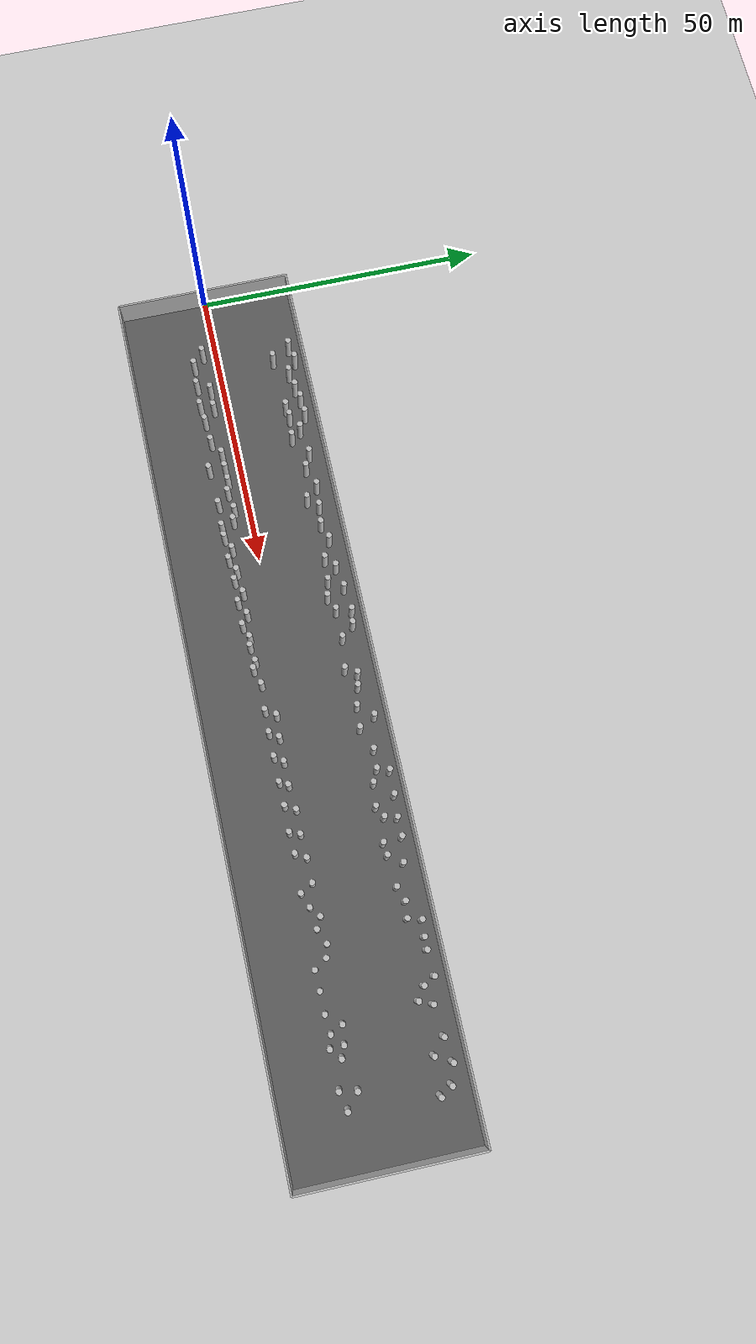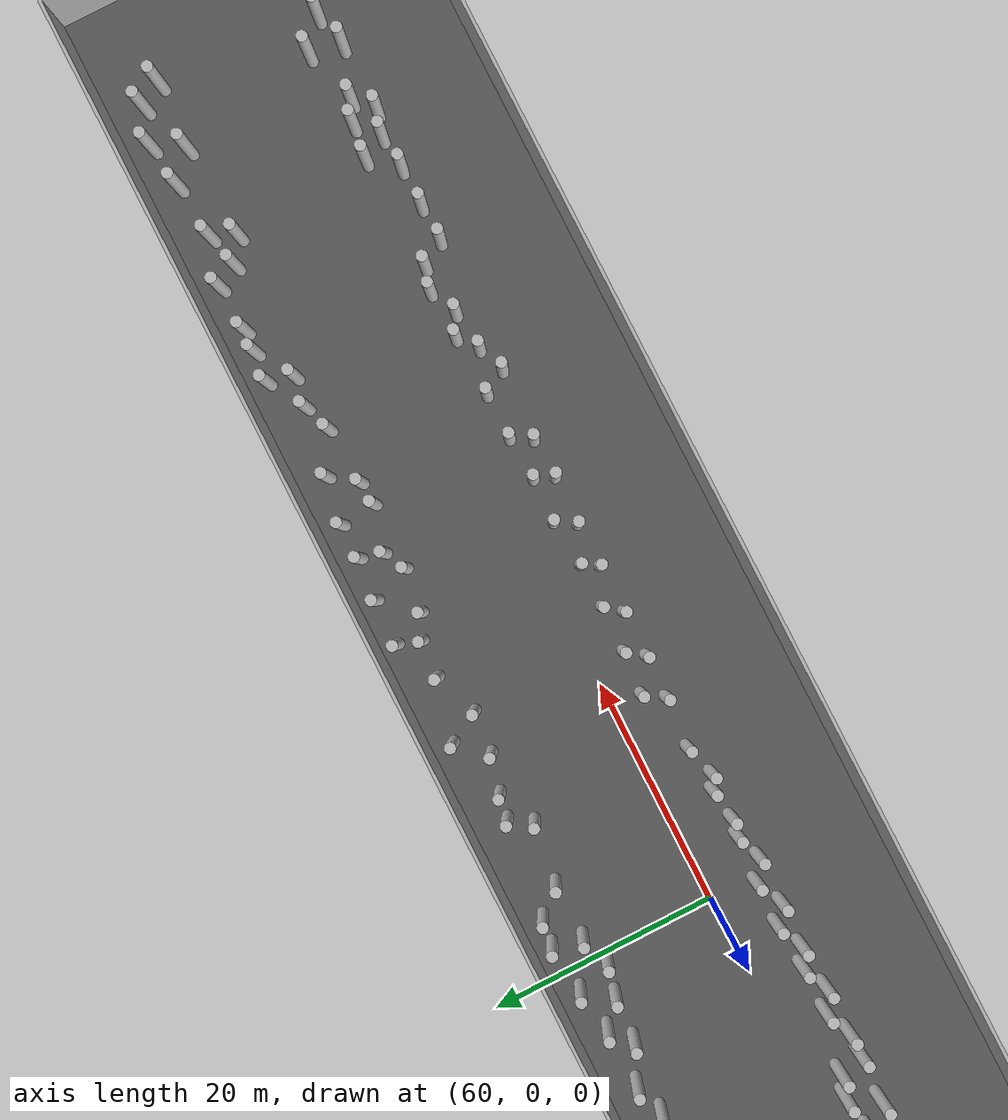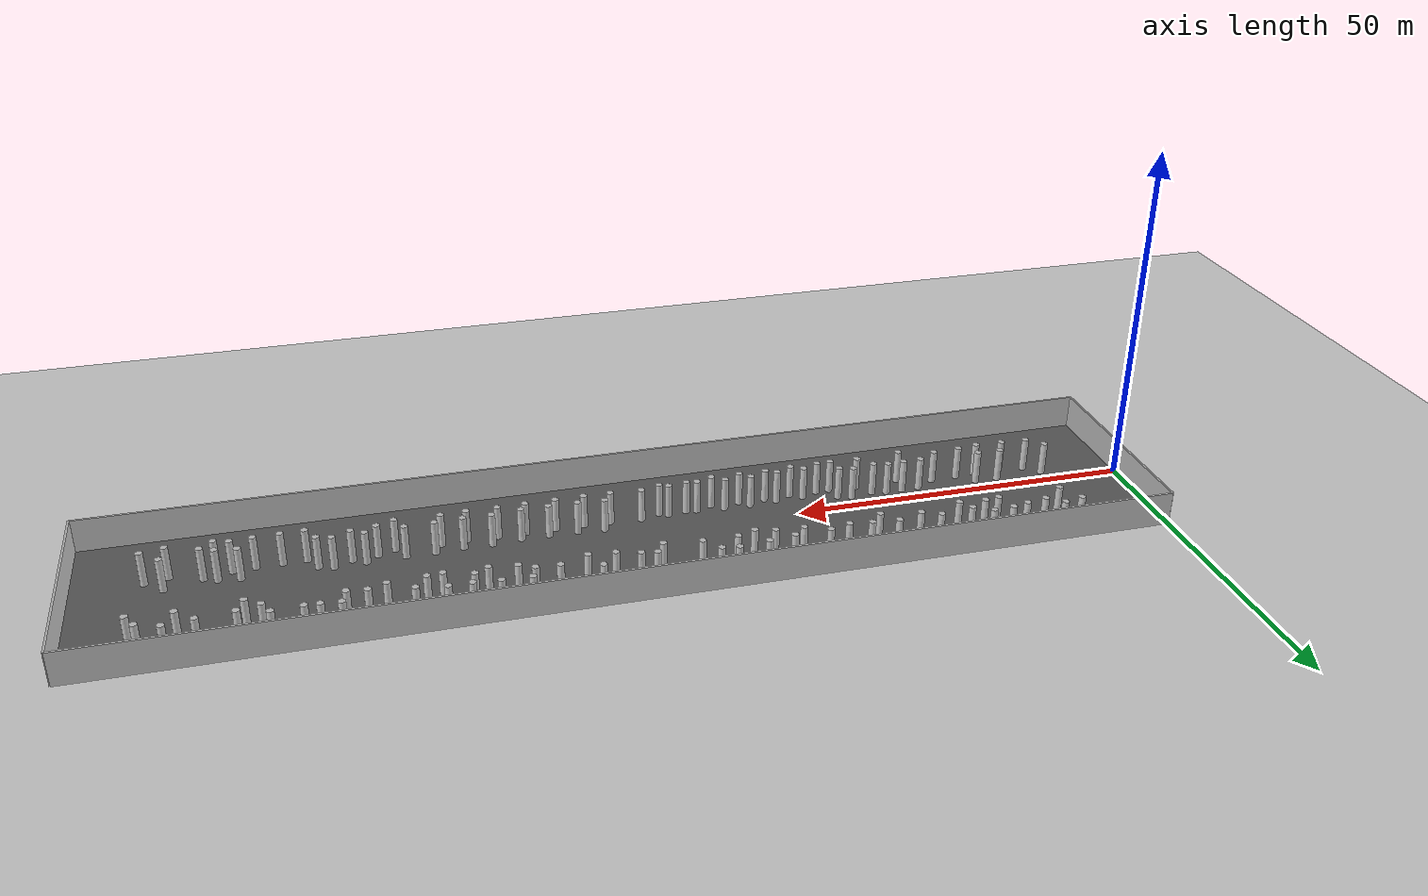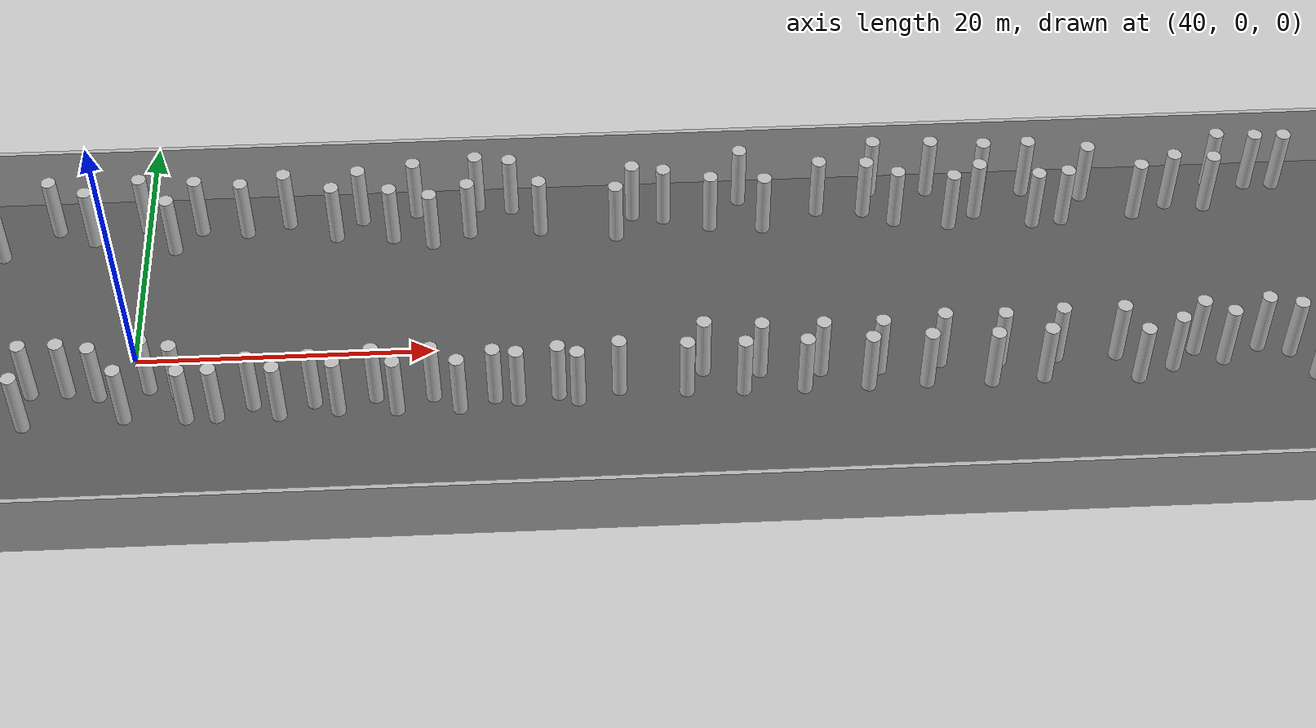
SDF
<?xml version="1.0" ?>
<sdf version="1.5">
  <world name="default">
    <plugin name="gazebo_ros_state" filename="libgazebo_ros_state.so">
      <ros>
        <namespace>/gazebo</namespace>
      </ros>
      <update_rate>20.0</update_rate>
    </plugin>

    <include><uri>model://sun</uri></include>
    <include><uri>model://ground_plane</uri></include>

    <model name="corridor_floor">
      <static>true</static>
      <pose>75 0 0.01 0 0 0</pose>
      <link name="link">
        <collision name="collision">
          <geometry><box><size>150 30 0.02</size></box></geometry>
        </collision>
        <visual name="visual">
          <geometry><box><size>150 30 0.02</size></box></geometry>
          <material>
            <ambient>0.25 0.25 0.25 1</ambient>
            <diffuse>0.35 0.35 0.35 1</diffuse>
          </material>
        </visual>
      </link>
    </model>

    <physics name="default_physics" default="0" type="ode">
      <gravity>0 0 -9.8066</gravity>
      <ode>
        <solver>
          <type>quick</type>
          <iters>10</iters>
          <sor>1.3</sor>
          <use_dynamic_moi_rescaling>0</use_dynamic_moi_rescaling>
        </solver>
        <constraints>
          <cfm>0</cfm>
          <erp>0.2</erp>
          <contact_max_correcting_vel>100</contact_max_correcting_vel>
          <contact_surface_layer>0.001</contact_surface_layer>
        </constraints>
      </ode>
      <max_step_size>0.004</max_step_size>
      <real_time_factor>1</real_time_factor>
      <real_time_update_rate>250</real_time_update_rate>
      <magnetic_field>6.0e-6 2.3e-5 -4.2e-5</magnetic_field>
    </physics>

    <model name="left_wall">
      <static>true</static>
      <pose>75 15.15 2.5 0 0 0</pose>
      <link name="link">
        <collision name="collision">
          <geometry><box><size>150 0.3 5</size></box></geometry>
        </collision>
        <visual name="visual">
          <geometry><box><size>150 0.3 5</size></box></geometry>
        </visual>
      </link>
    </model>

    <model name="right_wall">
      <static>true</static>
      <pose>75 -15.15 2.5 0 0 0</pose>
      <link name="link">
        <collision name="collision">
          <geometry><box><size>150 0.3 5</size></box></geometry>
        </collision>
        <visual name="visual">
          <geometry><box><size>150 0.3 5</size></box></geometry>
        </visual>
      </link>
    </model>

    <model name="start_wall">
      <static>true</static>
      <pose>0 0 2.5 0 0 0</pose>
      <link name="link">
        <collision name="collision">
          <geometry><box><size>0.3 30.3 5</size></box></geometry>
        </collision>
        <visual name="visual">
          <geometry><box><size>0.3 30.3 5</size></box></geometry>
        </visual>
      </link>
    </model>

    <model name="end_wall">
      <static>true</static>
      <pose>150 0 2.5 0 0 0</pose>
      <link name="link">
        <collision name="collision">
          <geometry><box><size>0.3 30.3 5</size></box></geometry>
        </collision>
        <visual name="visual">
          <geometry><box><size>0.3 30.3 5</size></box></geometry>
        </visual>
      </link>
    </model>

    <include><name>cylinder_000</name><uri>model://cylinder_r05_h5</uri><pose>20.987 -4.545 2.5 0 0 0</pose></include>
    <include><name>cylinder_001</name><uri>model://cylinder_r05_h5</uri><pose>24.005 -4.239 2.5 0 0 0</pose></include>
    <include><name>cylinder_002</name><uri>model://cylinder_r05_h5</uri><pose>30.674 -2.584 2.5 0 0 0</pose></include>
    <include><name>cylinder_003</name><uri>model://cylinder_r05_h5</uri><pose>43.101 -2.995 2.5 0 0 0</pose></include>
    <include><name>cylinder_004</name><uri>model://cylinder_r05_h5</uri><pose>16.972 -4.392 2.5 0 0 0</pose></include>
    <include><name>cylinder_005</name><uri>model://cylinder_r05_h5</uri><pose>33.304 -2.535 2.5 0 0 0</pose></include>
    <include><name>cylinder_006</name><uri>model://cylinder_r05_h5</uri><pose>27.966 -3.987 2.5 0 0 0</pose></include>
    <include><name>cylinder_007</name><uri>model://cylinder_r05_h5</uri><pose>35.758 -2.503 2.5 0 0 0</pose></include>
    <include><name>cylinder_008</name><uri>model://cylinder_r05_h5</uri><pose>39.676 -4.923 2.5 0 0 0</pose></include>
    <include><name>cylinder_009</name><uri>model://cylinder_r05_h5</uri><pose>37.860 -2.934 2.5 0 0 0</pose></include>
    <include><name>cylinder_010</name><uri>model://cylinder_r05_h5</uri><pose>43.769 -5.130 2.5 0 0 0</pose></include>
    <include><name>cylinder_011</name><uri>model://cylinder_r05_h5</uri><pose>33.062 -5.279 2.5 0 0 0</pose></include>
    <include><name>cylinder_012</name><uri>model://cylinder_r05_h5</uri><pose>41.158 -2.451 2.5 0 0 0</pose></include>
    <include><name>cylinder_013</name><uri>model://cylinder_r05_h5</uri><pose>18.267 -2.215 2.5 0 0 0</pose></include>
    <include><name>cylinder_014</name><uri>model://cylinder_r05_h5</uri><pose>21.690 -2.306 2.5 0 0 0</pose></include>
    <include><name>cylinder_015</name><uri>model://cylinder_r05_h5</uri><pose>45.783 -5.098 2.5 0 0 0</pose></include>
    <include><name>cylinder_016</name><uri>model://cylinder_r05_h5</uri><pose>48.132 -4.179 2.5 0 0 0</pose></include>
    <include><name>cylinder_017</name><uri>model://cylinder_r05_h5</uri><pose>49.873 -5.121 2.5 0 0 0</pose></include>
    <include><name>cylinder_018</name><uri>model://cylinder_r05_h5</uri><pose>52.170 -4.169 2.5 0 0 0</pose></include>
    <include><name>cylinder_019</name><uri>model://cylinder_r05_h5</uri><pose>53.752 -4.887 2.5 0 0 0</pose></include>
    <include><name>cylinder_020</name><uri>model://cylinder_r05_h5</uri><pose>56.210 -3.895 2.5 0 0 0</pose></include>
    <include><name>cylinder_021</name><uri>model://cylinder_r05_h5</uri><pose>57.629 -5.044 2.5 0 0 0</pose></include>
    <include><name>cylinder_022</name><uri>model://cylinder_r05_h5</uri><pose>60.032 -3.975 2.5 0 0 0</pose></include>
    <include><name>cylinder_023</name><uri>model://cylinder_r05_h5</uri><pose>61.772 -5.102 2.5 0 0 0</pose></include>
    <include><name>cylinder_024</name><uri>model://cylinder_r05_h5</uri><pose>64.095 -4.327 2.5 0 0 0</pose></include>
    <include><name>cylinder_025</name><uri>model://cylinder_r05_h5</uri><pose>65.613 -4.586 2.5 0 0 0</pose></include>
    <include><name>cylinder_026</name><uri>model://cylinder_r05_h5</uri><pose>68.319 -4.228 2.5 0 0 0</pose></include>
    <include><name>cylinder_027</name><uri>model://cylinder_r05_h5</uri><pose>69.581 -4.787 2.5 0 0 0</pose></include>
    <include><name>cylinder_028</name><uri>model://cylinder_r05_h5</uri><pose>72.334 -4.016 2.5 0 0 0</pose></include>
    <include><name>cylinder_029</name><uri>model://cylinder_r05_h5</uri><pose>76.787 -4.342 2.5 0 0 0</pose></include>
    <include><name>cylinder_030</name><uri>model://cylinder_r05_h5</uri><pose>77.960 -2.626 2.5 0 0 0</pose></include>
    <include><name>cylinder_031</name><uri>model://cylinder_r05_h5</uri><pose>80.576 -4.443 2.5 0 0 0</pose></include>
    <include><name>cylinder_032</name><uri>model://cylinder_r05_h5</uri><pose>81.743 -2.933 2.5 0 0 0</pose></include>
    <include><name>cylinder_033</name><uri>model://cylinder_r05_h5</uri><pose>84.632 -4.455 2.5 0 0 0</pose></include>
    <include><name>cylinder_034</name><uri>model://cylinder_r05_h5</uri><pose>85.808 -3.035 2.5 0 0 0</pose></include>
    <include><name>cylinder_035</name><uri>model://cylinder_r05_h5</uri><pose>88.901 -4.441 2.5 0 0 0</pose></include>
    <include><name>cylinder_036</name><uri>model://cylinder_r05_h5</uri><pose>89.711 -3.064 2.5 0 0 0</pose></include>
    <include><name>cylinder_037</name><uri>model://cylinder_r05_h5</uri><pose>92.803 -4.379 2.5 0 0 0</pose></include>
    <include><name>cylinder_038</name><uri>model://cylinder_r05_h5</uri><pose>93.836 -2.661 2.5 0 0 0</pose></include>
    <include><name>cylinder_039</name><uri>model://cylinder_r05_h5</uri><pose>97.137 -4.512 2.5 0 0 0</pose></include>
    <include><name>cylinder_040</name><uri>model://cylinder_r05_h5</uri><pose>97.811 -2.810 2.5 0 0 0</pose></include>
    <include><name>cylinder_041</name><uri>model://cylinder_r05_h5</uri><pose>100.671 -4.323 2.5 0 0 0</pose></include>
    <include><name>cylinder_042</name><uri>model://cylinder_r05_h5</uri><pose>101.698 -2.584 2.5 0 0 0</pose></include>
    <include><name>cylinder_043</name><uri>model://cylinder_r05_h5</uri><pose>112.911 -3.349 2.5 0 0 0</pose></include>
    <include><name>cylinder_044</name><uri>model://cylinder_r05_h5</uri><pose>128.768 -4.590 2.5 0 0 0</pose></include>
    <include><name>cylinder_045</name><uri>model://cylinder_r05_h5</uri><pose>125.712 -4.834 2.5 0 0 0</pose></include>
    <include><name>cylinder_046</name><uri>model://cylinder_r05_h5</uri><pose>132.587 -3.685 2.5 0 0 0</pose></include>
    <include><name>cylinder_047</name><uri>model://cylinder_r05_h5</uri><pose>122.165 -4.868 2.5 0 0 0</pose></include>
    <include><name>cylinder_048</name><uri>model://cylinder_r05_h5</uri><pose>130.694 -2.903 2.5 0 0 0</pose></include>
    <include><name>cylinder_049</name><uri>model://cylinder_r05_h5</uri><pose>115.438 -2.281 2.5 0 0 0</pose></include>
    <include><name>cylinder_050</name><uri>model://cylinder_r05_h5</uri><pose>106.988 -4.645 2.5 0 0 0</pose></include>
    <include><name>cylinder_051</name><uri>model://cylinder_r05_h5</uri><pose>127.678 -2.505 2.5 0 0 0</pose></include>
    <include><name>cylinder_052</name><uri>model://cylinder_r05_h5</uri><pose>130.855 -5.184 2.5 0 0 0</pose></include>
    <include><name>cylinder_053</name><uri>model://cylinder_r05_h5</uri><pose>109.405 -3.753 2.5 0 0 0</pose></include>
    <include><name>cylinder_054</name><uri>model://cylinder_r05_h5</uri><pose>111.075 -2.412 2.5 0 0 0</pose></include>
    <include><name>cylinder_055</name><uri>model://cylinder_r05_h5</uri><pose>117.489 -2.856 2.5 0 0 0</pose></include>
    <include><name>cylinder_056</name><uri>model://cylinder_r05_h5</uri><pose>118.897 -4.942 2.5 0 0 0</pose></include>
    <include><name>cylinder_057</name><uri>model://cylinder_r05_h5</uri><pose>105.748 -2.578 2.5 0 0 0</pose></include>
    <include><name>cylinder_058</name><uri>model://cylinder_r05_h5</uri><pose>13.137 -4.142 2.5 0 0 0</pose></include>
    <include><name>cylinder_059</name><uri>model://cylinder_r05_h5</uri><pose>10.998 -2.285 2.5 0 0 0</pose></include>
    <include><name>cylinder_060</name><uri>model://cylinder_r05_h5</uri><pose>137.092 -5.138 2.5 0 0 0</pose></include>
    <include><name>cylinder_061</name><uri>model://cylinder_r05_h5</uri><pose>140.221 -4.436 2.5 0 0 0</pose></include>
    <include><name>cylinder_062</name><uri>model://cylinder_r05_h5</uri><pose>137.673 -2.322 2.5 0 0 0</pose></include>
    <include><name>cylinder_063</name><uri>model://cylinder_r05_h5</uri><pose>123.657 12.991 2.5 0 0 0</pose></include>
    <include><name>cylinder_064</name><uri>model://cylinder_r05_h5</uri><pose>86.813 11.681 2.5 0 0 0</pose></include>
    <include><name>cylinder_065</name><uri>model://cylinder_r05_h5</uri><pose>111.572 11.193 2.5 0 0 0</pose></include>
    <include><name>cylinder_066</name><uri>model://cylinder_r05_h5</uri><pose>82.927 10.265 2.5 0 0 0</pose></include>
    <include><name>cylinder_067</name><uri>model://cylinder_r05_h5</uri><pose>12.789 12.896 2.5 0 0 0</pose></include>
    <include><name>cylinder_068</name><uri>model://cylinder_r05_h5</uri><pose>57.077 10.493 2.5 0 0 0</pose></include>
    <include><name>cylinder_069</name><uri>model://cylinder_r05_h5</uri><pose>46.860 11.501 2.5 0 0 0</pose></include>
    <include><name>cylinder_070</name><uri>model://cylinder_r05_h5</uri><pose>58.683 12.895 2.5 0 0 0</pose></include>
    <include><name>cylinder_071</name><uri>model://cylinder_r05_h5</uri><pose>105.664 12.251 2.5 0 0 0</pose></include>
    <include><name>cylinder_072</name><uri>model://cylinder_r05_h5</uri><pose>101.922 9.834 2.5 0 0 0</pose></include>
    <include><name>cylinder_073</name><uri>model://cylinder_r05_h5</uri><pose>33.691 12.242 2.5 0 0 0</pose></include>
    <include><name>cylinder_074</name><uri>model://cylinder_r05_h5</uri><pose>49.783 12.245 2.5 0 0 0</pose></include>
    <include><name>cylinder_075</name><uri>model://cylinder_r05_h5</uri><pose>109.112 10.338 2.5 0 0 0</pose></include>
    <include><name>cylinder_076</name><uri>model://cylinder_r05_h5</uri><pose>127.765 11.829 2.5 0 0 0</pose></include>
    <include><name>cylinder_077</name><uri>model://cylinder_r05_h5</uri><pose>53.117 10.813 2.5 0 0 0</pose></include>
    <include><name>cylinder_078</name><uri>model://cylinder_r05_h5</uri><pose>135.223 10.197 2.5 0 0 0</pose></include>
    <include><name>cylinder_079</name><uri>model://cylinder_r05_h5</uri><pose>72.647 9.981 2.5 0 0 0</pose></include>
    <include><name>cylinder_080</name><uri>model://cylinder_r05_h5</uri><pose>81.379 13.024 2.5 0 0 0</pose></include>
    <include><name>cylinder_081</name><uri>model://cylinder_r05_h5</uri><pose>132.757 12.310 2.5 0 0 0</pose></include>
    <include><name>cylinder_082</name><uri>model://cylinder_r05_h5</uri><pose>96.023 9.933 2.5 0 0 0</pose></include>
    <include><name>cylinder_083</name><uri>model://cylinder_r05_h5</uri><pose>59.841 9.833 2.5 0 0 0</pose></include>
    <include><name>cylinder_084</name><uri>model://cylinder_r05_h5</uri><pose>26.277 10.299 2.5 0 0 0</pose></include>
    <include><name>cylinder_085</name><uri>model://cylinder_r05_h5</uri><pose>14.658 9.727 2.5 0 0 0</pose></include>
    <include><name>cylinder_086</name><uri>model://cylinder_r05_h5</uri><pose>26.199 13.064 2.5 0 0 0</pose></include>
    <include><name>cylinder_087</name><uri>model://cylinder_r05_h5</uri><pose>43.684 11.884 2.5 0 0 0</pose></include>
    <include><name>cylinder_088</name><uri>model://cylinder_r05_h5</uri><pose>124.736 11.078 2.5 0 0 0</pose></include>
    <include><name>cylinder_089</name><uri>model://cylinder_r05_h5</uri><pose>20.882 12.409 2.5 0 0 0</pose></include>
    <include><name>cylinder_090</name><uri>model://cylinder_r05_h5</uri><pose>139.920 11.853 2.5 0 0 0</pose></include>
    <include><name>cylinder_091</name><uri>model://cylinder_r05_h5</uri><pose>73.839 11.881 2.5 0 0 0</pose></include>
    <include><name>cylinder_092</name><uri>model://cylinder_r05_h5</uri><pose>97.928 10.909 2.5 0 0 0</pose></include>
    <include><name>cylinder_093</name><uri>model://cylinder_r05_h5</uri><pose>65.349 12.933 2.5 0 0 0</pose></include>
    <include><name>cylinder_094</name><uri>model://cylinder_r05_h5</uri><pose>17.889 11.934 2.5 0 0 0</pose></include>
    <include><name>cylinder_095</name><uri>model://cylinder_r05_h5</uri><pose>101.578 12.961 2.5 0 0 0</pose></include>
    <include><name>cylinder_096</name><uri>model://cylinder_r05_h5</uri><pose>30.056 9.951 2.5 0 0 0</pose></include>
    <include><name>cylinder_097</name><uri>model://cylinder_r05_h5</uri><pose>114.264 10.857 2.5 0 0 0</pose></include>
    <include><name>cylinder_098</name><uri>model://cylinder_r05_h5</uri><pose>114.893 13.099 2.5 0 0 0</pose></include>
    <include><name>cylinder_099</name><uri>model://cylinder_r05_h5</uri><pose>75.992 11.451 2.5 0 0 0</pose></include>
    <include><name>cylinder_100</name><uri>model://cylinder_r05_h5</uri><pose>28.825 11.649 2.5 0 0 0</pose></include>
    <include><name>cylinder_101</name><uri>model://cylinder_r05_h5</uri><pose>62.977 13.305 2.5 0 0 0</pose></include>
    <include><name>cylinder_102</name><uri>model://cylinder_r05_h5</uri><pose>90.084 11.451 2.5 0 0 0</pose></include>
    <include><name>cylinder_103</name><uri>model://cylinder_r05_h5</uri><pose>103.989 9.998 2.5 0 0 0</pose></include>
    <include><name>cylinder_104</name><uri>model://cylinder_r05_h5</uri><pose>79.224 10.589 2.5 0 0 0</pose></include>
    <include><name>cylinder_105</name><uri>model://cylinder_r05_h5</uri><pose>39.868 12.248 2.5 0 0 0</pose></include>
    <include><name>cylinder_106</name><uri>model://cylinder_r05_h5</uri><pose>41.899 10.127 2.5 0 0 0</pose></include>
    <include><name>cylinder_107</name><uri>model://cylinder_r05_h5</uri><pose>98.453 12.935 2.5 0 0 0</pose></include>
    <include><name>cylinder_108</name><uri>model://cylinder_r05_h5</uri><pose>23.226 12.887 2.5 0 0 0</pose></include>
    <include><name>cylinder_109</name><uri>model://cylinder_r05_h5</uri><pose>141.169 9.849 2.5 0 0 0</pose></include>
    <include><name>cylinder_110</name><uri>model://cylinder_r05_h5</uri><pose>54.891 12.328 2.5 0 0 0</pose></include>
    <include><name>cylinder_111</name><uri>model://cylinder_r05_h5</uri><pose>136.706 12.817 2.5 0 0 0</pose></include>
    <include><name>cylinder_112</name><uri>model://cylinder_r05_h5</uri><pose>15.622 13.469 2.5 0 0 0</pose></include>
    <include><name>cylinder_113</name><uri>model://cylinder_r05_h5</uri><pose>67.363 10.743 2.5 0 0 0</pose></include>
    <include><name>cylinder_114</name><uri>model://cylinder_r05_h5</uri><pose>24.195 10.057 2.5 0 0 0</pose></include>
    <include><name>cylinder_115</name><uri>model://cylinder_r05_h5</uri><pose>119.551 12.780 2.5 0 0 0</pose></include>
    <include><name>cylinder_116</name><uri>model://cylinder_r05_h5</uri><pose>62.427 10.743 2.5 0 0 0</pose></include>
    <include><name>cylinder_117</name><uri>model://cylinder_r05_h5</uri><pose>126.820 9.713 2.5 0 0 0</pose></include>
    <include><name>cylinder_118</name><uri>model://cylinder_r05_h5</uri><pose>36.247 11.159 2.5 0 0 0</pose></include>
    <include><name>cylinder_119</name><uri>model://cylinder_r05_h5</uri><pose>94.770 13.293 2.5 0 0 0</pose></include>
    <include><name>cylinder_120</name><uri>model://cylinder_r05_h5</uri><pose>90.743 13.447 2.5 0 0 0</pose></include>
    <include><name>cylinder_121</name><uri>model://cylinder_r05_h5</uri><pose>117.546 12.850 2.5 0 0 0</pose></include>
    <include><name>cylinder_122</name><uri>model://cylinder_r05_h5</uri><pose>92.202 10.437 2.5 0 0 0</pose></include>

  </world>
</sdf>

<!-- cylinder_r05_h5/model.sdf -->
<sdf version="1.5">
  <model name="cylinder_r05_h5">
    <static>true</static>
    <link name="link">
      <collision name="collision">
        <geometry>
          <cylinder>
            <radius>0.5</radius>
            <length>5</length>
          </cylinder>
        </geometry>
      </collision>
      <visual name="visual">
        <geometry>
          <cylinder>
            <radius>0.5</radius>
            <length>5</length>
          </cylinder>
        </geometry>
        <material>
          <ambient>0.5 0.5 0.5 1</ambient>
          <diffuse>0.75 0.75 0.75 1</diffuse>
        </material>
      </visual>
    </link>
  </model>
</sdf>
